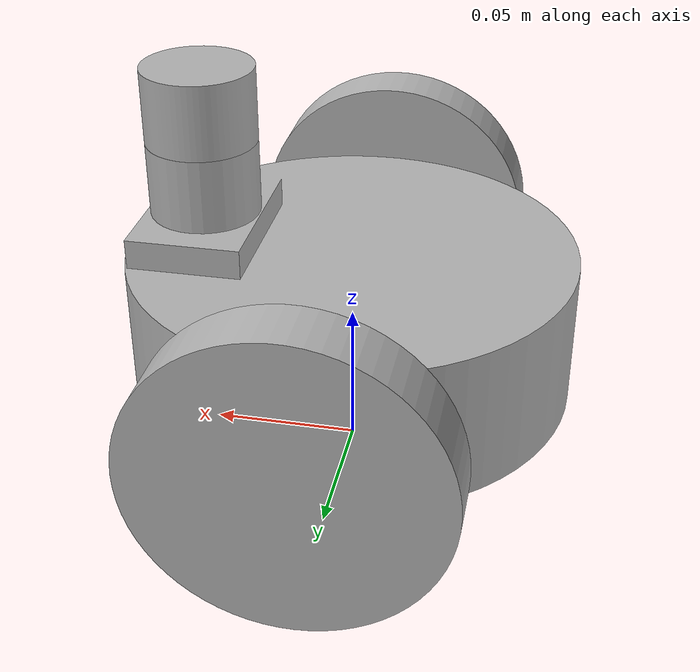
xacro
<?xml version="1.0" ?>
<robot name="robot11" xmlns:xacro="http://www.ros.org/wiki/xacro">

<xacro:include filename="$(find robot11_description)/urdf/materials.xacro" />
<xacro:include filename="$(find robot11_description)/urdf/robot11.trans" />
<xacro:include filename="$(find robot11_description)/urdf/robot11.gazebo" />
<link name="base_link">
  <inertial>
    <origin xyz="0.0025274740859267657 -3.84882739112881e-17 0.05149621351524297" rpy="0 0 0"/>
    <mass value="1.0019304956116066"/>
    <inertia ixx="0.001625" iyy="0.001793" izz="0.002822" ixy="-0.0" iyz="-0.0" ixz="-9.7e-05"/>
  </inertial>
  <visual>
    <origin xyz="0 0 0" rpy="0 0 0"/>
    <geometry>
      <mesh filename="package://robot11_description/meshes/base_link.stl" scale="0.001 0.001 0.001"/>
    </geometry>
    <material name="silver"/>
  </visual>
  <collision>
    <origin xyz="0 0 0" rpy="0 0 0"/>
    <geometry>
      <mesh filename="package://robot11_description/meshes/base_link.stl" scale="0.001 0.001 0.001"/>
    </geometry>
  </collision>
</link>

<link name="right_wheel_1">
  <inertial>
    <origin xyz="7.237528875152539e-18 -0.009999999999999995 6.938893903907228e-18" rpy="0 0 0"/>
    <mass value="0.1460840583919253"/>
    <inertia ixx="9.6e-05" iyy="0.000183" izz="9.6e-05" ixy="0.0" iyz="0.0" ixz="0.0"/>
  </inertial>
  <visual>
    <origin xyz="-0.0 0.08 -0.05" rpy="0 0 0"/>
    <geometry>
      <mesh filename="package://robot11_description/meshes/right_wheel_1.stl" scale="0.001 0.001 0.001"/>
    </geometry>
    <material name="silver"/>
  </visual>
  <collision>
    <origin xyz="-0.0 0.08 -0.05" rpy="0 0 0"/>
    <geometry>
      <mesh filename="package://robot11_description/meshes/right_wheel_1.stl" scale="0.001 0.001 0.001"/>
    </geometry>
  </collision>
</link>

<link name="left_wheel_1">
  <inertial>
    <origin xyz="-7.237528875152536e-18 0.009999999999999995 -1.3877787807814457e-17" rpy="0 0 0"/>
    <mass value="0.14608405839192537"/>
    <inertia ixx="9.6e-05" iyy="0.000183" izz="9.6e-05" ixy="-0.0" iyz="0.0" ixz="-0.0"/>
  </inertial>
  <visual>
    <origin xyz="-0.0 -0.08 -0.05" rpy="0 0 0"/>
    <geometry>
      <mesh filename="package://robot11_description/meshes/left_wheel_1.stl" scale="0.001 0.001 0.001"/>
    </geometry>
    <material name="silver"/>
  </visual>
  <collision>
    <origin xyz="-0.0 -0.08 -0.05" rpy="0 0 0"/>
    <geometry>
      <mesh filename="package://robot11_description/meshes/left_wheel_1.stl" scale="0.001 0.001 0.001"/>
    </geometry>
  </collision>
</link>

<link name="lidar_1">
  <inertial>
    <origin xyz="-1.3877787807814457e-17 -2.6433633583464338e-18 0.012499999999999997" rpy="0 0 0"/>
    <mass value="0.21100997931687968"/>
    <inertia ixx="2.9e-05" iyy="2.9e-05" izz="3.6e-05" ixy="-0.0" iyz="-0.0" ixz="-0.0"/>
  </inertial>
  <visual>
    <origin xyz="-0.05 -0.0 -0.11" rpy="0 0 0"/>
    <geometry>
      <mesh filename="package://robot11_description/meshes/lidar_1.stl" scale="0.001 0.001 0.001"/>
    </geometry>
    <material name="silver"/>
  </visual>
  <collision>
    <origin xyz="-0.05 -0.0 -0.11" rpy="0 0 0"/>
    <geometry>
      <mesh filename="package://robot11_description/meshes/lidar_1.stl" scale="0.001 0.001 0.001"/>
    </geometry>
  </collision>
</link>

<joint name="Revolute 1" type="continuous">
  <origin xyz="0.0 -0.08 0.05" rpy="0 0 0"/>
  <parent link="base_link"/>
  <child link="right_wheel_1"/>
  <axis xyz="0.0 -1.0 0.0"/>
</joint>

<joint name="Revolute 2" type="continuous">
  <origin xyz="0.0 0.08 0.05" rpy="0 0 0"/>
  <parent link="base_link"/>
  <child link="left_wheel_1"/>
  <axis xyz="0.0 1.0 0.0"/>
</joint>

<joint name="Rigid 3" type="fixed">
  <origin xyz="0.05 0.0 0.11" rpy="0 0 0"/>
  <parent link="base_link"/>
  <child link="lidar_1"/>
</joint>

</robot>

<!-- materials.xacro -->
<robot name="robot11" xmlns:xacro="http://www.ros.org/wiki/xacro" >

<material name="silver">
  <color rgba="0.700 0.700 0.700 1.000"/>
</material>

</robot>

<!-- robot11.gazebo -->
<robot name="robot11" xmlns:xacro="http://www.ros.org/wiki/xacro" >

<xacro:property name="body_color" value="Gazebo/Silver" />

<gazebo>
  <plugin name="control" filename="libgazebo_ros_control.so"/>
</gazebo>
<gazebo reference="base_link">
  <material>${body_color}</material>
  <mu1>0.2</mu1>
  <mu2>0.2</mu2>
  <selfCollide>true</selfCollide>
  <gravity>true</gravity>
</gazebo>

<gazebo reference="right_wheel_1">
  <material>${body_color}</material>
  <mu1>0.2</mu1>
  <mu2>0.2</mu2>
  <selfCollide>true</selfCollide>
</gazebo>

<gazebo reference="left_wheel_1">
  <material>${body_color}</material>
  <mu1>0.2</mu1>
  <mu2>0.2</mu2>
  <selfCollide>true</selfCollide>
</gazebo>

<gazebo reference="lidar_1">
  <material>${body_color}</material>
  <mu1>0.2</mu1>
  <mu2>0.2</mu2>
  <selfCollide>true</selfCollide>
</gazebo>

</robot>
